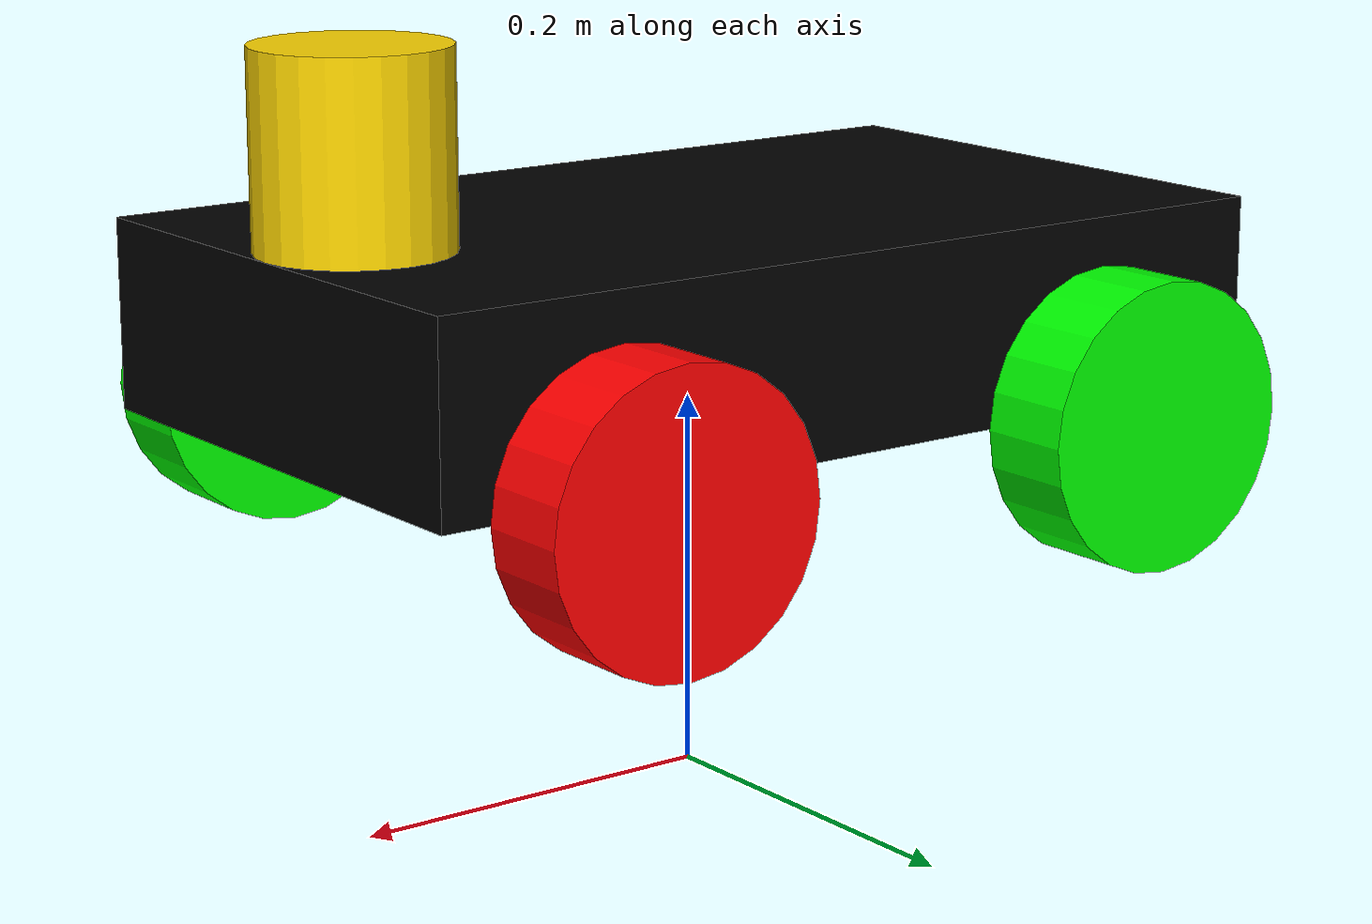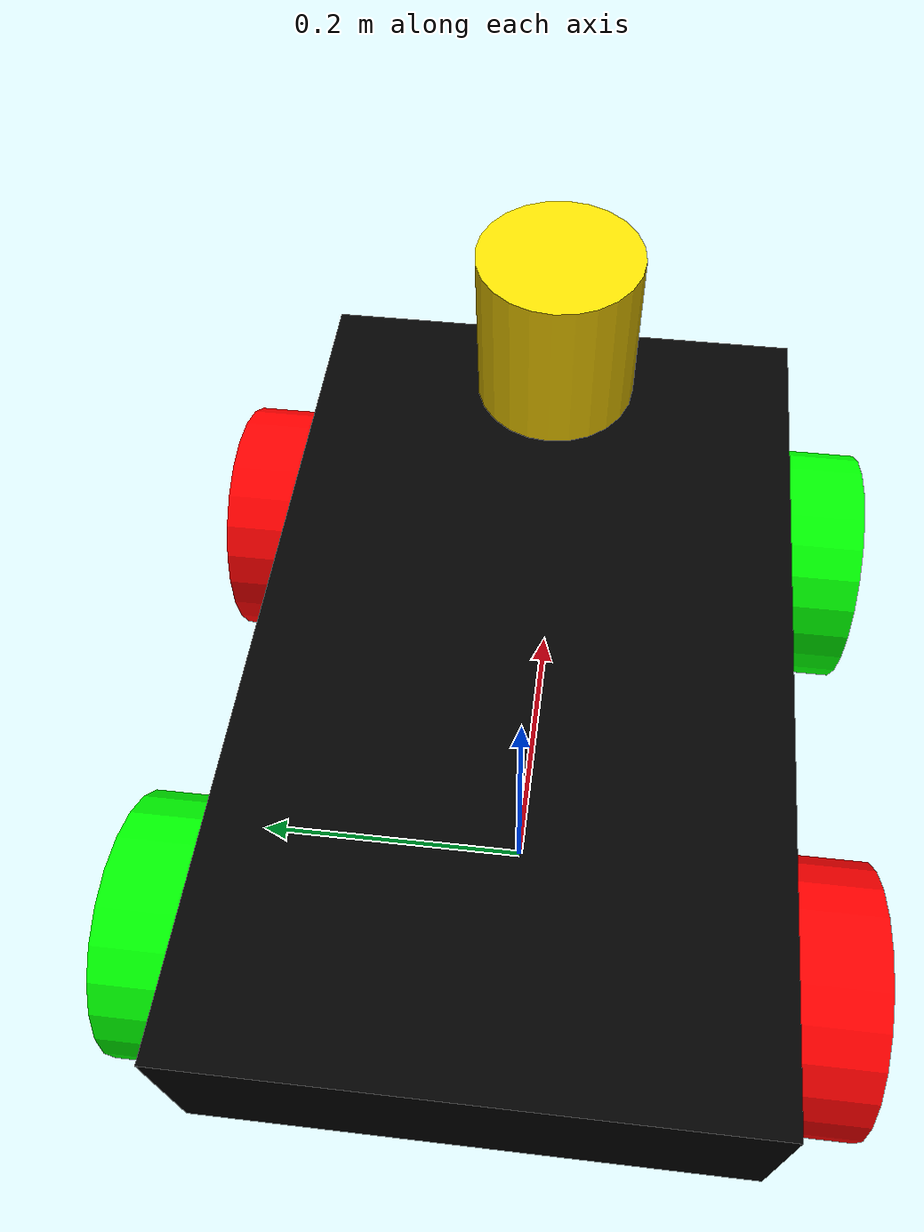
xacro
<?xml version="1.0"?>
<robot xmlns:xacro="http://www.ros.org/wiki/xacro" name="robotika">

    <xacro:include filename="$(find robot_description)/urdf/material.xacro" />
    <xacro:include filename="$(find robot_description)/urdf/gazebo_plugins.gazebo" />

    <!-- This is the base link  -->
    <link name="base_link"/>

    <joint name="chassis_joint" type="fixed">
        <origin xyz="0.0 0.0 0.25" rpy="0.0 0.0 0.0"/>
        <parent link="base_link"/>
        <child link="chassis_link"/>
        <axis xyz="0.0 0.0 0.0"/>
    </joint>

    <!-- This is the chassis link  -->

    <link name="chassis_link">
        <inertial>
            <origin xyz="0.0 0.0 0.0" rpy="0.0 0.0 0.0" />
            <mass value="1.0" />
            <inertia ixx="0.1" ixy="0.0" ixz="0.0" iyy="0.1" iyz="0.0" izz="0.1" />
        </inertial>
        <visual name="chassis_visual">
            <origin xyz="0.0 0.0 0.0" rpy="0.0 0.0 0.0" />
            <geometry>
                <box size="0.5 0.3 0.1" />
            </geometry>
            <material name="Black">
                <color rgba="0 0 0 1" />
            </material>
        </visual>
        <collision name="chassis_collision">
            <origin xyz="0.0 0.0 0.0" rpy="0.0 0.0 0.0" />
            <geometry>
                <box size="0.5 0.3 0.15" />
            </geometry>
        </collision>
    </link>
    <gazebo reference="chassis_link">
        <material name="Black">
            <color rgba="0 0 0 1" />
        </material>
    </gazebo>
    <!-- Back right wheel -->
    <joint name="wheel1_joint" type="continuous">
        <origin xyz="-0.15 -0.177 -0.05" rpy="0.0 0.0 0.0" />
        <parent link="chassis_link" />
        <child link="wheel1_link" />
        <axis xyz="0.0 1.0 0.0" />
        <limit lower="0.0" upper="0.0" effort="0.0" velocity="0.0" />
    </joint>
    <link name="wheel1_link">
        <inertial>
            <origin xyz="0.0 0.0 0.0" rpy="0.0 0.0 0.0" />
            <mass value="0.5" />
            <inertia ixx="0.1" ixy="0.0" ixz="0.0" iyy="0.1" iyz="0.0" izz="0.1" />
        </inertial>
        <visual name="wheel1_visual">
            <origin xyz="0.0 0.0 0.0" rpy="1.570795 0.0 0.0" />
            <geometry>
                <cylinder length="0.05" radius="0.075" />
            </geometry>
            <material name="red">
                <color rgba="1 0 0 1" />
            </material>
        </visual>
        <collision name="wheel1_collision">
            <origin xyz="0.0 0.0 0.0" rpy="1.570795 0.0 0.0" />
            <geometry>
                <cylinder length="0.05" radius="0.075" />
            </geometry>
        </collision>
    </link>
    <gazebo reference="wheel1_link">
        <material name="red">
            <color rgba="1 0 0 1" />
        </material>
    </gazebo>
    <!-- Back left wheel -->
    <joint name="wheel2_joint" type="continuous">
        <origin xyz="-0.15 0.177 -0.05" rpy="0.0 0.0 0.0" />
        <parent link="chassis_link" />
        <child link="wheel2_link" />
        <axis xyz="0.0 1.0 0.0" />
        <limit lower="0.0" upper="0.0" effort="0.0" velocity="0.0" />
    </joint>
    <link name="wheel2_link">
        <inertial>
            <origin xyz="0.0 0.0 0.0" rpy="0.0 0.0 0.0" />
            <mass value="0.5" />
            <inertia ixx="0.1" ixy="0.0" ixz="0.0" iyy="0.1" iyz="0.0" izz="0.1" />
        </inertial>
        <visual name="wheel2_visual">
            <origin xyz="0.0 0.0 0.0" rpy="1.570795 0.0 0.0" />
            <geometry>
                <cylinder length="0.05" radius="0.075" />
            </geometry>
            <material name="green">
                <color rgba="0 1 0 1" />
                <texture filename="" />
            </material>
        </visual>
        <collision name="wheel2_collision">
            <origin xyz="0.0 0.0 0.0" rpy="1.570795 0.0 0.0" />
            <geometry>
                <cylinder length="0.05" radius="0.075" />
            </geometry>
        </collision>
    </link>
    <gazebo reference="wheel2_link">
        <material name="green">
            <color rgba="0 1 0 1" />
        </material>
    </gazebo>
    <!-- front right wheel -->
    <joint name="wheel3_joint" type="continuous">
        <origin xyz="0.15 -0.177 -0.05" rpy="0.0 0.0 0.0" />
        <parent link="chassis_link" />
        <child link="wheel3_link" />
        <axis xyz="0.0 1.0 0.0" />
        <limit lower="0.0" upper="0.0" effort="0.0" velocity="0.0" />
    </joint>
    <link name="wheel3_link">
        <inertial>
            <origin xyz="0.0 0.0 0.0" rpy="0.0 0.0 0.0" />
            <mass value="0.5" />
            <inertia ixx="0.1" ixy="0.0" ixz="0.0" iyy="0.1" iyz="0.0" izz="0.1" />
        </inertial>
        <visual name="wheel3_visual">
            <origin xyz="0.0 0.0 0.0" rpy="1.570795 0.0 0.0" />
            <geometry>
                <cylinder length="0.05" radius="0.075" />
            </geometry>
            <material name="green">
                <color rgba="0 1 0 1" />
                <texture filename="" />
            </material>
        </visual>
        <collision name="wheel3_collision">
            <origin xyz="0.0 0.0 0.0" rpy="1.570795 0.0 0.0" />
            <geometry>
                <cylinder length="0.05" radius="0.075" />
            </geometry>
        </collision>
    </link>
    <gazebo reference="wheel3_link">
        <material name="green">
            <color rgba="0 1 0 1" />
        </material>
    </gazebo>
    <!-- front left wheel -->
    <joint name="wheel4_joint" type="continuous">
        <origin xyz="0.15 0.177 -0.05" rpy="0.0 0.0 0.0" />
        <parent link="chassis_link" />
        <child link="wheel4_link" />
        <axis xyz="0.0 1.0 0.0" />
        <limit lower="0.0" upper="0.0" effort="0.0" velocity="0.0" />
    </joint>
    <link name="wheel4_link">
        <inertial>
            <origin xyz="0.0 0.0 0.0" rpy="0.0 0.0 0.0" />
            <mass value="0.5" />
            <inertia ixx="0.1" ixy="0.0" ixz="0.0" iyy="0.1" iyz="0.0" izz="0.1" />
        </inertial>
        <visual name="wheel4_visual">
            <origin xyz="0.0 0.0 0.0" rpy="1.570795 0.0 0.0" />
            <geometry>
                <cylinder length="0.05" radius="0.075" />
            </geometry>
            <material name="red">
                <color rgba="1 0 0 1" />
                <texture filename="" />
            </material>
        </visual>
        <collision name="wheel4_collision">
            <origin xyz="0.0 0.0 0.0" rpy="1.570795 0.0 0.0" />
            <geometry>
                <cylinder length="0.05" radius="0.075" />
            </geometry>
        </collision>
    </link>
    <gazebo reference="wheel4_link">
        <material name="red">
            <color rgba="1 0 0 1" />
        </material>
    </gazebo>

    <!-- LIDAR-->
    <link name="lider_link">
        <inertial>
            <origin xyz="0.0 0.0 0.0" rpy="0.0 0.0 0.0" />
            <mass value="0.10" />
            <inertia ixx="1e-6" ixy="0.0" ixz="0.0" iyy="1e-6" iyz="0.0" izz="1e-6" />
        </inertial>
        <visual>
        <origin xyz="0.0 0.0 0.0" rpy="0.0 0.0 0.0"/>            <geometry>
                <cylinder length="0.1" radius="0.05"/>
                <mesh filename="package://robot_description/meshes/rplidar.dae" />
            </geometry>
         <material name="gold">
                <color rgba="1 0.843137 0 1" />
        </material>
        </visual>

        <collision>
            <origin xyz="0.0 0.0 0.1" rpy="0.0 0.0 0.0" />
            <geometry>
                <mesh filename="package://robot_description/meshes/rplidar.dae" />
            </geometry>
        </collision>
    </link>

    <joint name="lider_joint" type="fixed">
        <origin xyz="0.2 0.0 0.10" rpy="0 0 0" />
        <parent link="chassis_link" />
        <child link="lider_link" />
        <axis xyz="0 0 0" />
    </joint>

</robot>

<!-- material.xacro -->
<robot xmlns:xacro="http://www.ros.org/wiki/xacro" name="robotika">

    <!-- Material Definitions -->
    <material name="White">
        <color rgba="1 1 1 1"/>
    </material>

    <material name="Blue">
        <color rgba="0.2 0.2 1 1"/>
    </material>

    <material name="Red">
        <color rgba="0.8 0.0 0.0 1.0"/>
    </material>

    <material name="Black">
        <color rgba="0 0 0 1"/>
    </material>

    <material name="Green">
        <color rgba="0.0 1.0 0.0 1"/>
    </material>

    <material name="Gold">
        <color rgba="1.0 0.84 0.0 1.0"/>
    </material>
    </robot>
